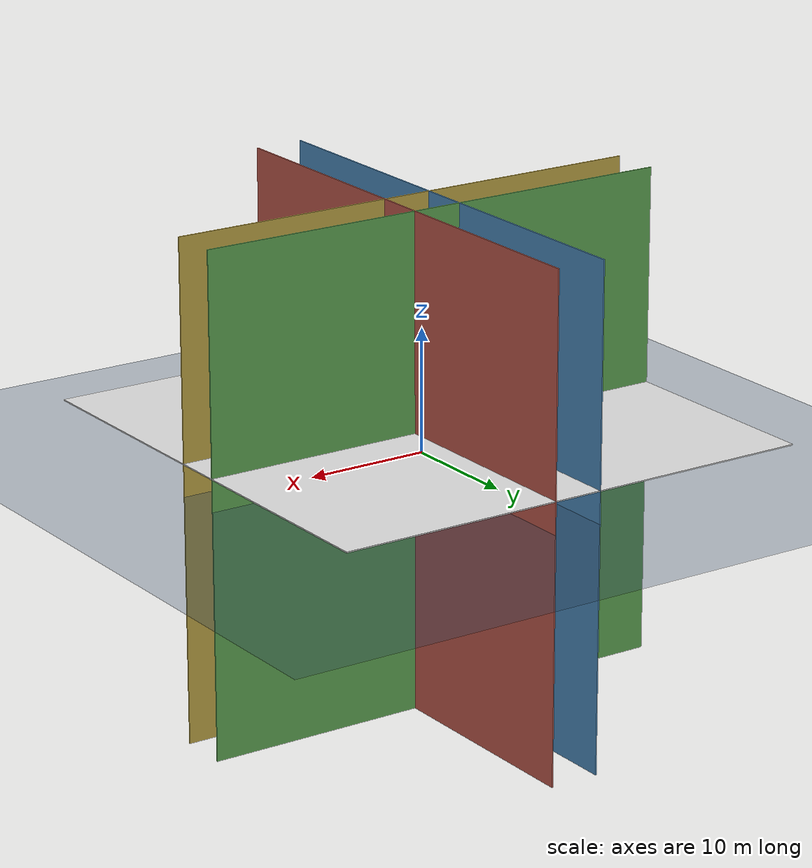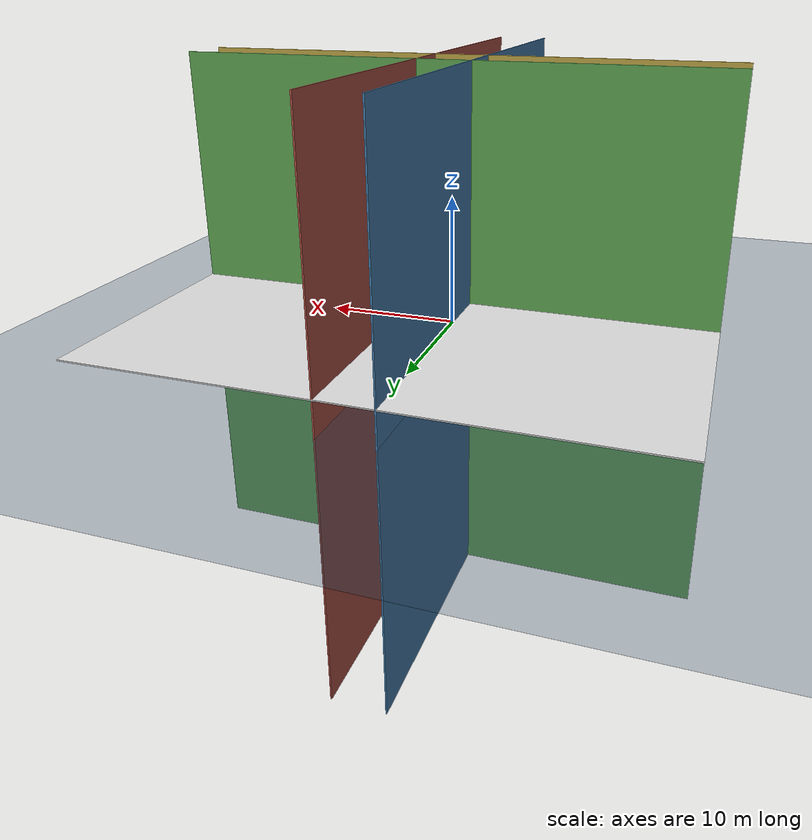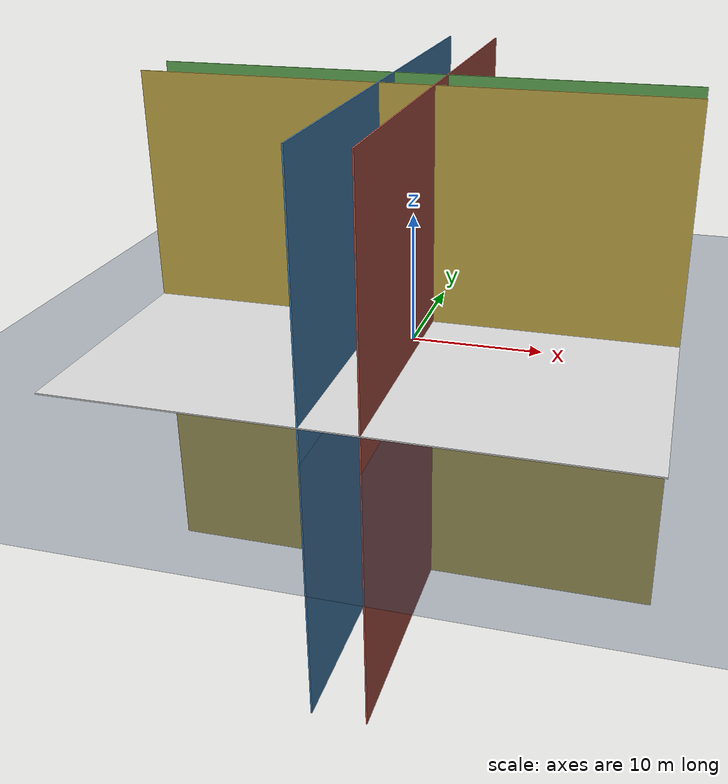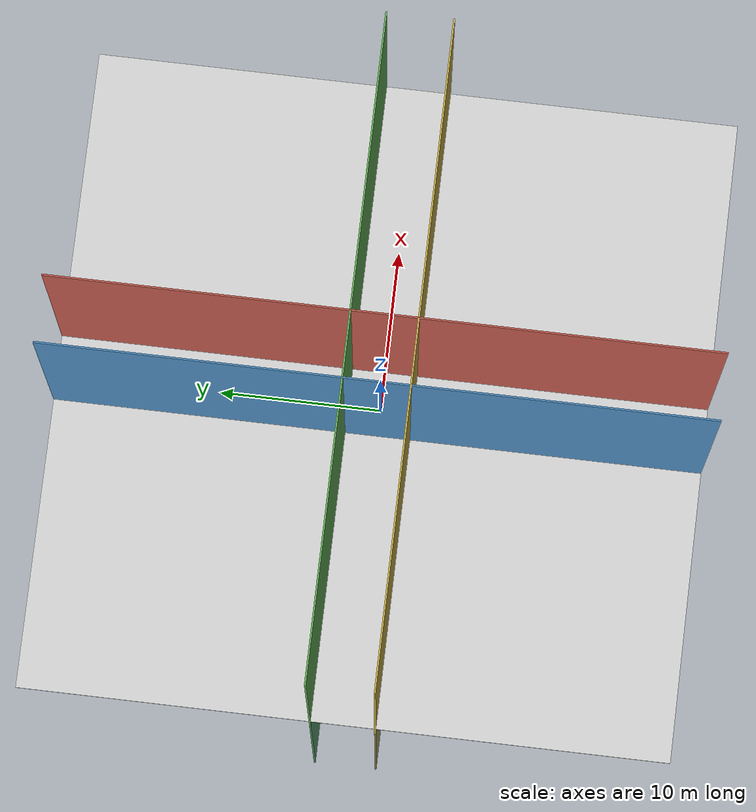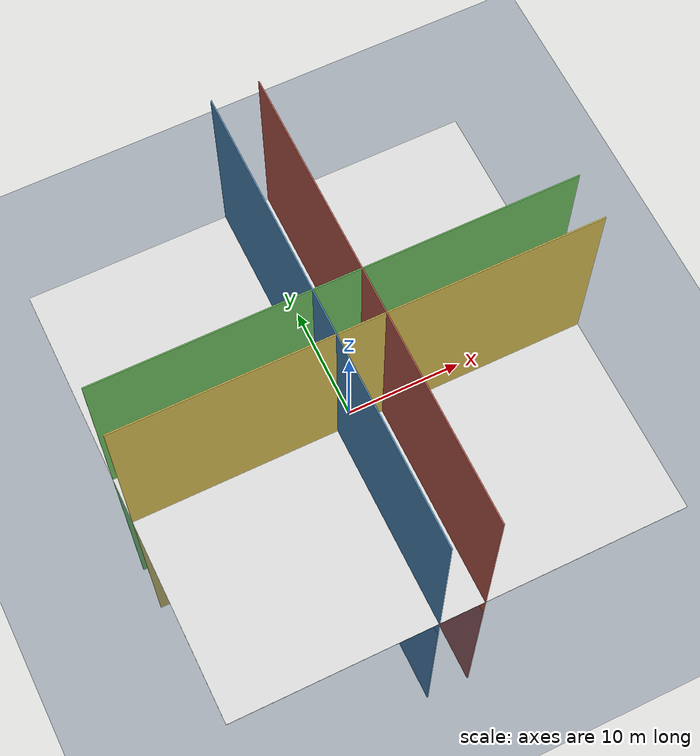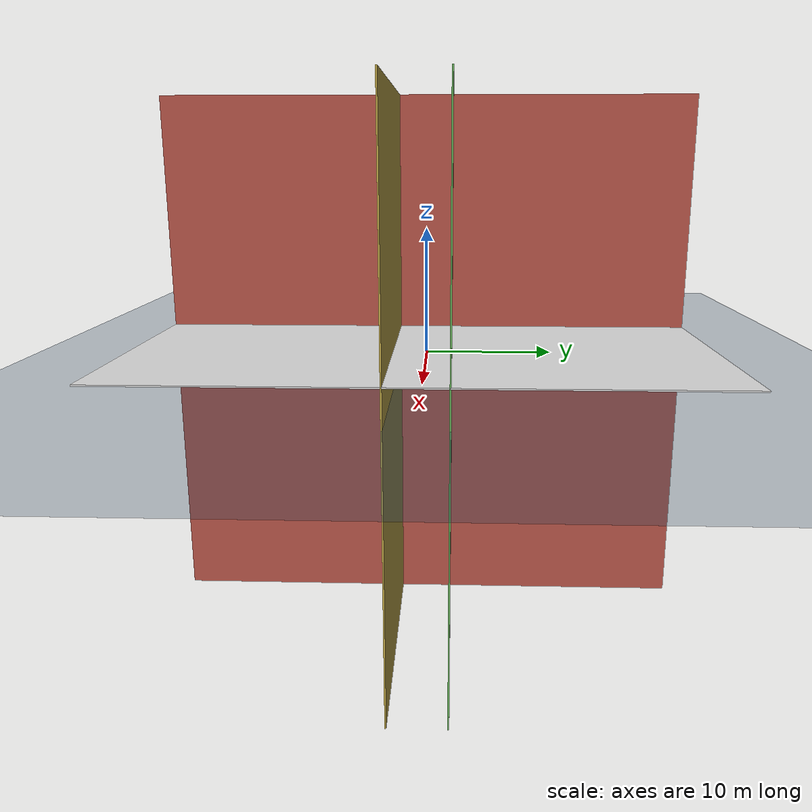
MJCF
<mujoco model="drones room">
  <option integrator="RK4" density="1.225" viscosity="1.8e-5"/>
  <compiler inertiafromgeom="false" autolimits="true"/>
  <statistic center="0 0 1" extent="3"/>

  <visual>
    <headlight diffuse="0.6 0.6 0.6" ambient="0.5 0.5 0.5" specular="0 0 0"/>
    <global azimuth="-20" elevation="-20"/>
  </visual>

  <asset>
    <texture type="skybox" builtin="gradient" rgb1="0.3 0.5 0.7" rgb2="0 0 0" width="512" height="3072"/>
    <texture type="2d" name="groundplane" builtin="checker" mark="edge" rgb1="0.2 0.3 0.4"
             rgb2="0.1 0.2 0.3" markrgb="0.8 0.8 0.8" width="512" height="512"/>
    <material name="groundplane" texture="groundplane" texuniform="true" texrepeat="2 2" reflectance="0.2"/>
  </asset>

  <default>
    <!-- Group 1 is visible to the sensors' rays. No contacts: crashes are detected from the
         room geometry and the rangers, which is cheaper than MuJoCo collision. -->
    <default class="room">
      <geom type="box" group="1" contype="0" conaffinity="0"/>
    </default>
  </default>

  <worldbody>
    <light pos="0 0 3" dir="0 0 -1" directional="true"/>
    <geom name="floor" size="0 0 0.05" type="plane" material="groundplane"/>
    <body name="wall_px" mocap="true" pos="2 0 0"><geom class="room" size="0.05 20 20" rgba="0.75 0.35 0.3 1"/></body>
    <body name="wall_nx" mocap="true" pos="-2 0 0"><geom class="room" size="0.05 20 20" rgba="0.3 0.55 0.75 1"/></body>
    <body name="wall_py" mocap="true" pos="0 2 0"><geom class="room" size="20 0.05 20" rgba="0.4 0.7 0.35 1"/></body>
    <body name="wall_ny" mocap="true" pos="0 -2 0"><geom class="room" size="20 0.05 20" rgba="0.8 0.7 0.3 1"/></body>
    <body name="ceiling" mocap="true" pos="0 0 2.5"><geom class="room" size="20 20 0.05" rgba="0.85 0.85 0.85 1"/></body>
  </worldbody>
</mujoco>
